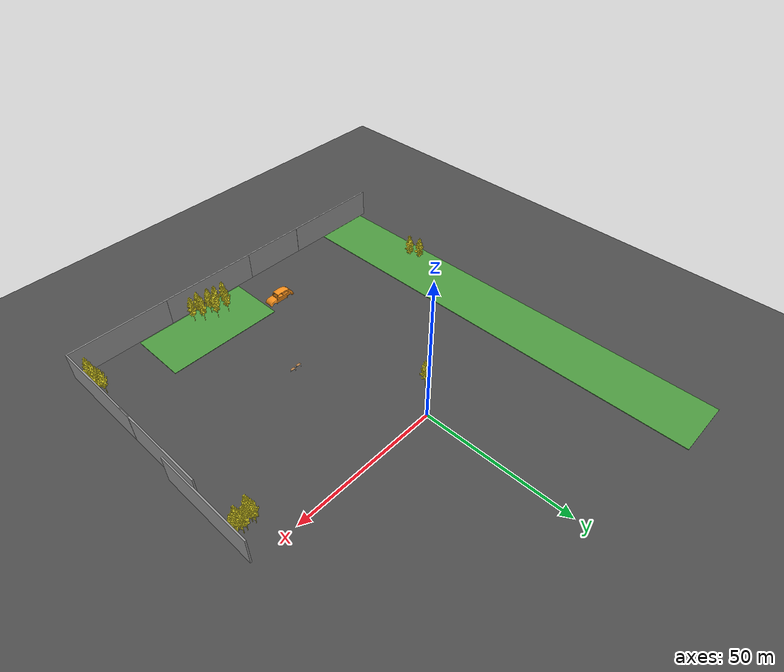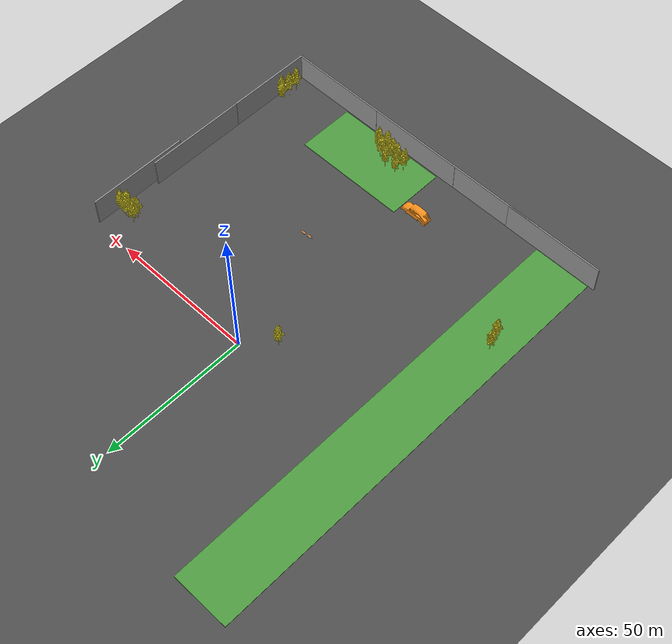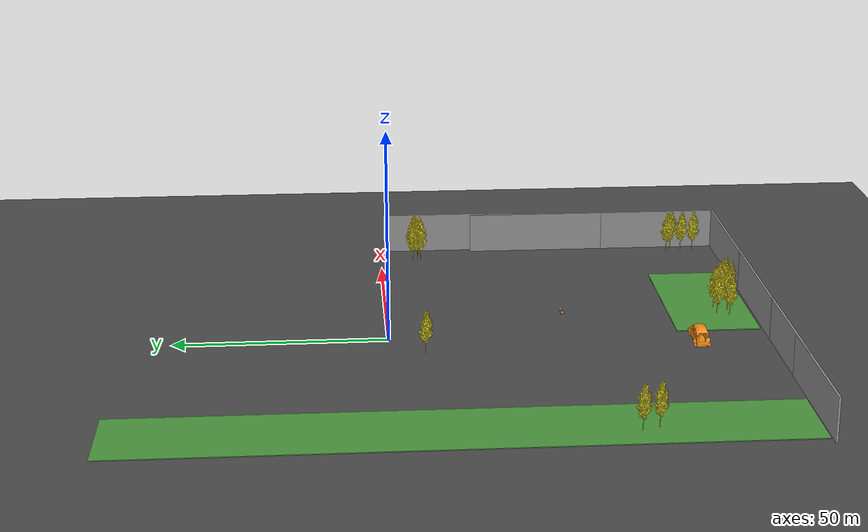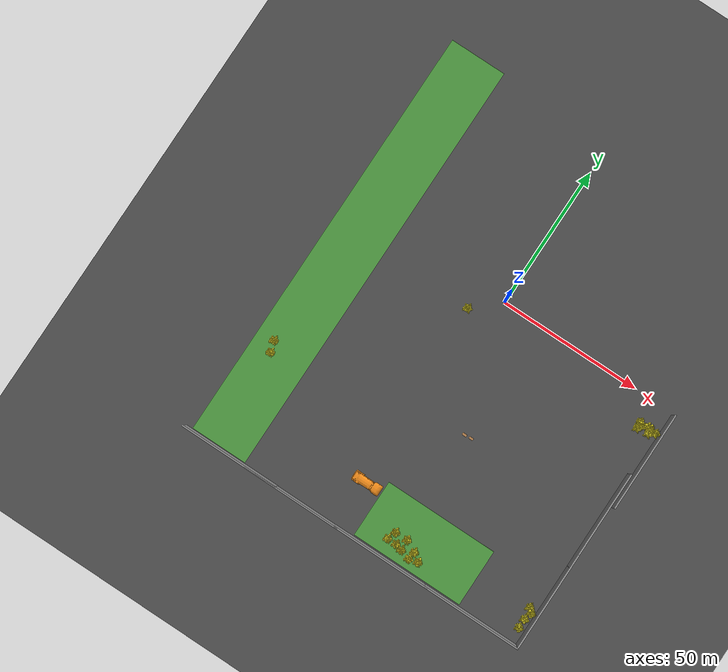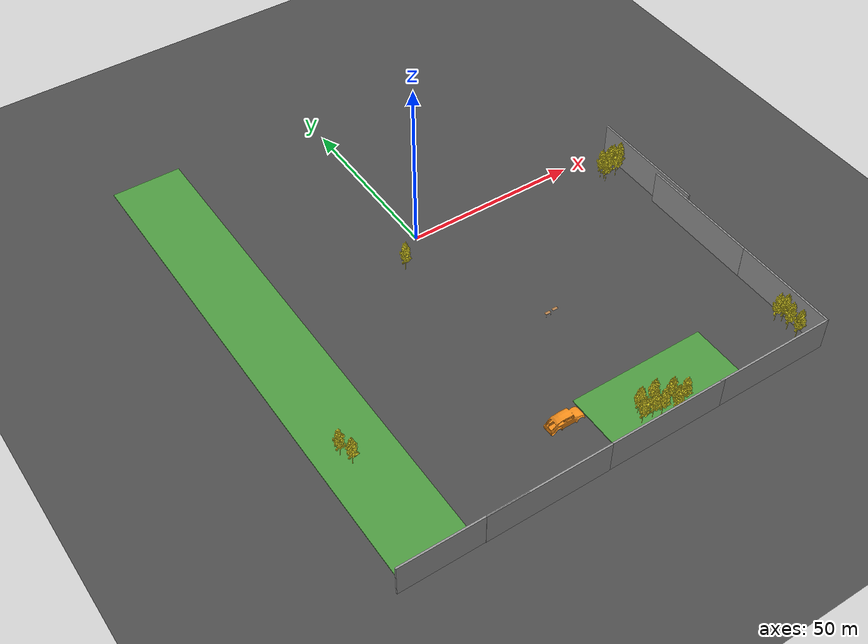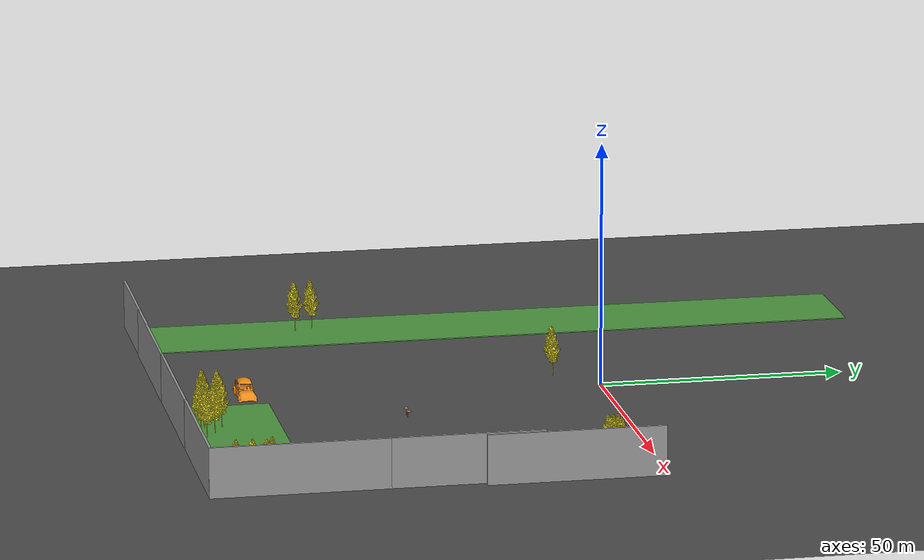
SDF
<sdf version="1.6">
 <world name="default">
  <model name="ground_plane">
   <static>1</static>
   <link name="link">
    <collision name="collision">
     <geometry><plane><normal>0 0 1</normal><size>40000 40000</size></plane></geometry>
     <surface>
      <contact><collide_bitmask>65535</collide_bitmask></contact>
      <friction><ode><mu>100</mu><mu2>50</mu2></ode></friction>
     </surface>
    </collision>
    <visual name="visual">
     <cast_shadows>0</cast_shadows>
     <geometry><plane><normal>0 0 1</normal><size>130 180</size></plane></geometry>
     <material>
      <script><uri>file://media/materials/scripts/gazebo.material</uri><name>Gazebo/Road</name></script>
     </material>
    </visual>
   </link>
  </model>
  <model name="table">
   <static>1</static>
   <link name="link">
    <collision name="surface">
     <pose>0 0 1 0 -0 0</pose>
     <geometry><box><size>1.5 0.8 0.03</size></box></geometry>
     <surface><friction><ode><mu>0.6</mu><mu2>0.6</mu2></ode></friction></surface>
    </collision>
    <visual name="visual1">
     <pose>0 0 1 0 -0 0</pose>
     <geometry><box><size>1.5 0.8 0.03</size></box></geometry>
     <material>
      <script><uri>file://media/materials/scripts/gazebo.material</uri><name>Gazebo/Wood</name></script>
     </material>
    </visual>
    <collision name="front_left_leg">
     <pose>0.68 0.38 0.5 0 -0 0</pose>
     <geometry><cylinder><radius>0.02</radius><length>1</length></cylinder></geometry>
    </collision>
    <visual name="front_left_leg">
     <pose>0.68 0.38 0.5 0 -0 0</pose>
     <geometry><cylinder><radius>0.02</radius><length>1</length></cylinder></geometry>
     <material>
      <script><uri>file://media/materials/scripts/gazebo.material</uri><name>Gazebo/Grey</name></script>
     </material>
    </visual>
    <collision name="front_right_leg">
     <pose>0.68 -0.38 0.5 0 -0 0</pose>
     <geometry><cylinder><radius>0.02</radius><length>1</length></cylinder></geometry>
    </collision>
    <visual name="front_right_leg">
     <pose>0.68 -0.38 0.5 0 -0 0</pose>
     <geometry><cylinder><radius>0.02</radius><length>1</length></cylinder></geometry>
     <material>
      <script><uri>file://media/materials/scripts/gazebo.material</uri><name>Gazebo/Grey</name></script>
     </material>
    </visual>
    <collision name="back_right_leg">
     <pose>-0.68 -0.38 0.5 0 -0 0</pose>
     <geometry><cylinder><radius>0.02</radius><length>1</length></cylinder></geometry>
    </collision>
    <visual name="back_right_leg">
     <pose>-0.68 -0.38 0.5 0 -0 0</pose>
     <geometry><cylinder><radius>0.02</radius><length>1</length></cylinder></geometry>
     <material>
      <script><uri>file://media/materials/scripts/gazebo.material</uri><name>Gazebo/Grey</name></script>
     </material>
    </visual>
    <collision name="back_left_leg">
     <pose>-0.68 0.38 0.5 0 -0 0</pose>
     <geometry><cylinder><radius>0.02</radius><length>1</length></cylinder></geometry>
    </collision>
    <visual name="back_left_leg">
     <pose>-0.68 0.38 0.5 0 -0 0</pose>
     <geometry><cylinder><radius>0.02</radius><length>1</length></cylinder></geometry>
     <material>
      <script><uri>file://media/materials/scripts/gazebo.material</uri><name>Gazebo/Grey</name></script>
     </material>
    </visual>
   </link>
   <pose>15.0111 -42.1076 0 0 -0 0</pose>
  </model>
  <model name="table_0">
   <static>1</static>
   <link name="link">
    <collision name="surface">
     <pose>0 0 1 0 -0 0</pose>
     <geometry><box><size>1.5 0.8 0.03</size></box></geometry>
     <surface><friction><ode><mu>0.6</mu><mu2>0.6</mu2></ode></friction></surface>
    </collision>
    <visual name="visual1">
     <pose>0 0 1 0 -0 0</pose>
     <geometry><box><size>1.5 0.8 0.03</size></box></geometry>
     <material>
      <script><uri>file://media/materials/scripts/gazebo.material</uri><name>Gazebo/Wood</name></script>
     </material>
    </visual>
    <collision name="front_left_leg">
     <pose>0.68 0.38 0.5 0 -0 0</pose>
     <geometry><cylinder><radius>0.02</radius><length>1</length></cylinder></geometry>
    </collision>
    <visual name="front_left_leg">
     <pose>0.68 0.38 0.5 0 -0 0</pose>
     <geometry><cylinder><radius>0.02</radius><length>1</length></cylinder></geometry>
     <material>
      <script><uri>file://media/materials/scripts/gazebo.material</uri><name>Gazebo/Grey</name></script>
     </material>
    </visual>
    <collision name="front_right_leg">
     <pose>0.68 -0.38 0.5 0 -0 0</pose>
     <geometry><cylinder><radius>0.02</radius><length>1</length></cylinder></geometry>
    </collision>
    <visual name="front_right_leg">
     <pose>0.68 -0.38 0.5 0 -0 0</pose>
     <geometry><cylinder><radius>0.02</radius><length>1</length></cylinder></geometry>
     <material>
      <script><uri>file://media/materials/scripts/gazebo.material</uri><name>Gazebo/Grey</name></script>
     </material>
    </visual>
    <collision name="back_right_leg">
     <pose>-0.68 -0.38 0.5 0 -0 0</pose>
     <geometry><cylinder><radius>0.02</radius><length>1</length></cylinder></geometry>
    </collision>
    <visual name="back_right_leg">
     <pose>-0.68 -0.38 0.5 0 -0 0</pose>
     <geometry><cylinder><radius>0.02</radius><length>1</length></cylinder></geometry>
     <material>
      <script><uri>file://media/materials/scripts/gazebo.material</uri><name>Gazebo/Grey</name></script>
     </material>
    </visual>
    <collision name="back_left_leg">
     <pose>-0.68 0.38 0.5 0 -0 0</pose>
     <geometry><cylinder><radius>0.02</radius><length>1</length></cylinder></geometry>
    </collision>
    <visual name="back_left_leg">
     <pose>-0.68 0.38 0.5 0 -0 0</pose>
     <geometry><cylinder><radius>0.02</radius><length>1</length></cylinder></geometry>
     <material>
      <script><uri>file://media/materials/scripts/gazebo.material</uri><name>Gazebo/Grey</name></script>
     </material>
    </visual>
   </link>
   <pose>12.6248 -42.2786 0 0 -0 0</pose>
  </model>
  <model name="wall1_clone_clone_0_clone_3">
   <link name="link">
    <enable_wind>1</enable_wind>
    <inertial>
     <mass>1</mass>
     <inertia><ixx>1</ixx><ixy>0</ixy><ixz>0</ixz><iyy>1</iyy><iyz>0</iyz><izz>1</izz></inertia>
    </inertial>
    <visual name="visual">
     <cast_shadows>0</cast_shadows>
     <geometry><box><size>35 0.5 10</size></box></geometry>
     <material>
      <script>
       <uri>model://grey_wall/materials/scripts</uri>
       <uri>model://grey_wall/materials/textures</uri>
       <name>vrc/grey_wall</name>
      </script>
      <shader type="pixel"><normal_map>__default__</normal_map></shader>
      <ambient>1 1 1 1</ambient>
      <diffuse>1 1 1 1</diffuse>
      <specular>0 0 0 1</specular>
      <emissive>0 0 0 1</emissive>
     </material>
    </visual>
    <collision name="collision">
     <geometry><box><size>35 0.5 10</size></box></geometry>
     <surface>
      <friction>
       <ode><mu>1</mu><mu2>1</mu2><fdir1>0 0 0</fdir1><slip1>0</slip1><slip2>0</slip2></ode>
       <torsional>
        <coefficient>1</coefficient>
        <patch_radius>0</patch_radius>
        <surface_radius>0</surface_radius>
        <use_patch_radius>1</use_patch_radius>
        <ode><slip>0</slip></ode>
       </torsional>
      </friction>
      <bounce><restitution_coefficient>0</restitution_coefficient><threshold>1e+06</threshold></bounce>
      <contact>
       <collide_without_contact>0</collide_without_contact>
       <collide_without_contact_bitmask>1</collide_without_contact_bitmask>
       <collide_bitmask>1</collide_bitmask>
       <ode>
        <soft_cfm>0</soft_cfm>
        <soft_erp>0.2</soft_erp>
        <kp>1e+13</kp>
        <kd>1</kd>
        <max_vel>0.01</max_vel>
        <min_depth>0</min_depth>
       </ode>
       <bullet>
        <split_impulse>1</split_impulse>
        <split_impulse_penetration_threshold>-0.01</split_impulse_penetration_threshold>
        <soft_cfm>0</soft_cfm>
        <soft_erp>0.2</soft_erp>
        <kp>1e+13</kp>
        <kd>1</kd>
       </bullet>
      </contact>
     </surface>
    </collision>
   </link>
   <static>1</static>
   <pose>62.8276 -41.3887 5 0 0 -1.57191</pose>
  </model>
  <model name="wall1_clone_clone_0_clone_4">
   <link name="link">
    <enable_wind>1</enable_wind>
    <inertial>
     <mass>1</mass>
     <inertia><ixx>1</ixx><ixy>0</ixy><ixz>0</ixz><iyy>1</iyy><iyz>0</iyz><izz>1</izz></inertia>
    </inertial>
    <visual name="visual">
     <cast_shadows>0</cast_shadows>
     <geometry><box><size>35 0.5 10</size></box></geometry>
     <material>
      <script>
       <uri>model://grey_wall/materials/scripts</uri>
       <uri>model://grey_wall/materials/textures</uri>
       <name>vrc/grey_wall</name>
      </script>
      <shader type="pixel"><normal_map>__default__</normal_map></shader>
      <ambient>1 1 1 1</ambient>
      <diffuse>1 1 1 1</diffuse>
      <specular>0 0 0 1</specular>
      <emissive>0 0 0 1</emissive>
     </material>
    </visual>
    <collision name="collision">
     <geometry><box><size>35 0.5 10</size></box></geometry>
     <surface>
      <friction>
       <ode><mu>1</mu><mu2>1</mu2><fdir1>0 0 0</fdir1><slip1>0</slip1><slip2>0</slip2></ode>
       <torsional>
        <coefficient>1</coefficient>
        <patch_radius>0</patch_radius>
        <surface_radius>0</surface_radius>
        <use_patch_radius>1</use_patch_radius>
        <ode><slip>0</slip></ode>
       </torsional>
      </friction>
      <bounce><restitution_coefficient>0</restitution_coefficient><threshold>1e+06</threshold></bounce>
      <contact>
       <collide_without_contact>0</collide_without_contact>
       <collide_without_contact_bitmask>1</collide_without_contact_bitmask>
       <collide_bitmask>1</collide_bitmask>
       <ode>
        <soft_cfm>0</soft_cfm>
        <soft_erp>0.2</soft_erp>
        <kp>1e+13</kp>
        <kd>1</kd>
        <max_vel>0.01</max_vel>
        <min_depth>0</min_depth>
       </ode>
       <bullet>
        <split_impulse>1</split_impulse>
        <split_impulse_penetration_threshold>-0.01</split_impulse_penetration_threshold>
        <soft_cfm>0</soft_cfm>
        <soft_erp>0.2</soft_erp>
        <kp>1e+13</kp>
        <kd>1</kd>
       </bullet>
      </contact>
     </surface>
    </collision>
   </link>
   <static>1</static>
   <pose>62.8357 -71.4632 5 0 0 -1.57191</pose>
  </model>
  <model name="wall1_clone_clone_clone">
   <link name="link">
    <enable_wind>1</enable_wind>
    <inertial>
     <mass>1</mass>
     <inertia><ixx>1</ixx><ixy>0</ixy><ixz>0</ixz><iyy>1</iyy><iyz>0</iyz><izz>1</izz></inertia>
    </inertial>
    <visual name="visual">
     <cast_shadows>0</cast_shadows>
     <geometry><box><size>35 0.5 10</size></box></geometry>
     <material>
      <script>
       <uri>model://grey_wall/materials/scripts</uri>
       <uri>model://grey_wall/materials/textures</uri>
       <name>vrc/grey_wall</name>
      </script>
      <shader type="pixel"><normal_map>__default__</normal_map></shader>
      <ambient>1 1 1 1</ambient>
      <diffuse>1 1 1 1</diffuse>
      <specular>0 0 0 1</specular>
      <emissive>0 0 0 1</emissive>
     </material>
    </visual>
    <collision name="collision">
     <geometry><box><size>35 0.5 10</size></box></geometry>
     <surface>
      <friction>
       <ode><mu>1</mu><mu2>1</mu2><fdir1>0 0 0</fdir1><slip1>0</slip1><slip2>0</slip2></ode>
       <torsional>
        <coefficient>1</coefficient>
        <patch_radius>0</patch_radius>
        <surface_radius>0</surface_radius>
        <use_patch_radius>1</use_patch_radius>
        <ode><slip>0</slip></ode>
       </torsional>
      </friction>
      <bounce><restitution_coefficient>0</restitution_coefficient><threshold>1e+06</threshold></bounce>
      <contact>
       <collide_without_contact>0</collide_without_contact>
       <collide_without_contact_bitmask>1</collide_without_contact_bitmask>
       <collide_bitmask>1</collide_bitmask>
       <ode>
        <soft_cfm>0</soft_cfm>
        <soft_erp>0.2</soft_erp>
        <kp>1e+13</kp>
        <kd>1</kd>
        <max_vel>0.01</max_vel>
        <min_depth>0</min_depth>
       </ode>
       <bullet>
        <split_impulse>1</split_impulse>
        <split_impulse_penetration_threshold>-0.01</split_impulse_penetration_threshold>
        <soft_cfm>0</soft_cfm>
        <soft_erp>0.2</soft_erp>
        <kp>1e+13</kp>
        <kd>1</kd>
       </bullet>
      </contact>
     </surface>
    </collision>
   </link>
   <static>1</static>
   <pose>45.5042 -88.7374 5 0 -0 0</pose>
  </model>
  <model name="wall1_clone_clone_clone_0">
   <link name="link">
    <enable_wind>1</enable_wind>
    <inertial>
     <mass>1</mass>
     <inertia><ixx>1</ixx><ixy>0</ixy><ixz>0</ixz><iyy>1</iyy><iyz>0</iyz><izz>1</izz></inertia>
    </inertial>
    <visual name="visual">
     <cast_shadows>0</cast_shadows>
     <geometry><box><size>35 0.5 10</size></box></geometry>
     <material>
      <script>
       <uri>model://grey_wall/materials/scripts</uri>
       <uri>model://grey_wall/materials/textures</uri>
       <name>vrc/grey_wall</name>
      </script>
      <shader type="pixel"><normal_map>__default__</normal_map></shader>
      <ambient>1 1 1 1</ambient>
      <diffuse>1 1 1 1</diffuse>
      <specular>0 0 0 1</specular>
      <emissive>0 0 0 1</emissive>
     </material>
    </visual>
    <collision name="collision">
     <geometry><box><size>35 0.5 10</size></box></geometry>
     <surface>
      <friction>
       <ode><mu>1</mu><mu2>1</mu2><fdir1>0 0 0</fdir1><slip1>0</slip1><slip2>0</slip2></ode>
       <torsional>
        <coefficient>1</coefficient>
        <patch_radius>0</patch_radius>
        <surface_radius>0</surface_radius>
        <use_patch_radius>1</use_patch_radius>
        <ode><slip>0</slip></ode>
       </torsional>
      </friction>
      <bounce><restitution_coefficient>0</restitution_coefficient><threshold>1e+06</threshold></bounce>
      <contact>
       <collide_without_contact>0</collide_without_contact>
       <collide_without_contact_bitmask>1</collide_without_contact_bitmask>
       <collide_bitmask>1</collide_bitmask>
       <ode>
        <soft_cfm>0</soft_cfm>
        <soft_erp>0.2</soft_erp>
        <kp>1e+13</kp>
        <kd>1</kd>
        <max_vel>0.01</max_vel>
        <min_depth>0</min_depth>
       </ode>
       <bullet>
        <split_impulse>1</split_impulse>
        <split_impulse_penetration_threshold>-0.01</split_impulse_penetration_threshold>
        <soft_cfm>0</soft_cfm>
        <soft_erp>0.2</soft_erp>
        <kp>1e+13</kp>
        <kd>1</kd>
       </bullet>
      </contact>
     </surface>
    </collision>
   </link>
   <static>1</static>
   <pose>11.7564 -88.7753 5 0 -0 0</pose>
  </model>
  <model name="wall1_clone_clone_clone_1">
   <link name="link">
    <enable_wind>1</enable_wind>
    <inertial>
     <mass>1</mass>
     <inertia><ixx>1</ixx><ixy>0</ixy><ixz>0</ixz><iyy>1</iyy><iyz>0</iyz><izz>1</izz></inertia>
    </inertial>
    <visual name="visual">
     <cast_shadows>0</cast_shadows>
     <geometry><box><size>35 0.5 10</size></box></geometry>
     <material>
      <script>
       <uri>model://grey_wall/materials/scripts</uri>
       <uri>model://grey_wall/materials/textures</uri>
       <name>vrc/grey_wall</name>
      </script>
      <shader type="pixel"><normal_map>__default__</normal_map></shader>
      <ambient>1 1 1 1</ambient>
      <diffuse>1 1 1 1</diffuse>
      <specular>0 0 0 1</specular>
      <emissive>0 0 0 1</emissive>
     </material>
    </visual>
    <collision name="collision">
     <geometry><box><size>35 0.5 10</size></box></geometry>
     <surface>
      <friction>
       <ode><mu>1</mu><mu2>1</mu2><fdir1>0 0 0</fdir1><slip1>0</slip1><slip2>0</slip2></ode>
       <torsional>
        <coefficient>1</coefficient>
        <patch_radius>0</patch_radius>
        <surface_radius>0</surface_radius>
        <use_patch_radius>1</use_patch_radius>
        <ode><slip>0</slip></ode>
       </torsional>
      </friction>
      <bounce><restitution_coefficient>0</restitution_coefficient><threshold>1e+06</threshold></bounce>
      <contact>
       <collide_without_contact>0</collide_without_contact>
       <collide_without_contact_bitmask>1</collide_without_contact_bitmask>
       <collide_bitmask>1</collide_bitmask>
       <ode>
        <soft_cfm>0</soft_cfm>
        <soft_erp>0.2</soft_erp>
        <kp>1e+13</kp>
        <kd>1</kd>
        <max_vel>0.01</max_vel>
        <min_depth>0</min_depth>
       </ode>
       <bullet>
        <split_impulse>1</split_impulse>
        <split_impulse_penetration_threshold>-0.01</split_impulse_penetration_threshold>
        <soft_cfm>0</soft_cfm>
        <soft_erp>0.2</soft_erp>
        <kp>1e+13</kp>
        <kd>1</kd>
       </bullet>
      </contact>
     </surface>
    </collision>
   </link>
   <static>1</static>
   <pose>-22.0368 -88.8383 5 0 -0 0</pose>
  </model>
  <model name="wall1_clone_clone_clone_2">
   <link name="link">
    <enable_wind>1</enable_wind>
    <inertial>
     <mass>1</mass>
     <inertia><ixx>1</ixx><ixy>0</ixy><ixz>0</ixz><iyy>1</iyy><iyz>0</iyz><izz>1</izz></inertia>
    </inertial>
    <visual name="visual">
     <cast_shadows>0</cast_shadows>
     <geometry><box><size>35 0.5 10</size></box></geometry>
     <material>
      <script>
       <uri>model://grey_wall/materials/scripts</uri>
       <uri>model://grey_wall/materials/textures</uri>
       <name>vrc/grey_wall</name>
      </script>
      <shader type="pixel"><normal_map>__default__</normal_map></shader>
      <ambient>1 1 1 1</ambient>
      <diffuse>1 1 1 1</diffuse>
      <specular>0 0 0 1</specular>
      <emissive>0 0 0 1</emissive>
     </material>
    </visual>
    <collision name="collision">
     <geometry><box><size>35 0.5 10</size></box></geometry>
     <surface>
      <friction>
       <ode><mu>1</mu><mu2>1</mu2><fdir1>0 0 0</fdir1><slip1>0</slip1><slip2>0</slip2></ode>
       <torsional>
        <coefficient>1</coefficient>
        <patch_radius>0</patch_radius>
        <surface_radius>0</surface_radius>
        <use_patch_radius>1</use_patch_radius>
        <ode><slip>0</slip></ode>
       </torsional>
      </friction>
      <bounce><restitution_coefficient>0</restitution_coefficient><threshold>1e+06</threshold></bounce>
      <contact>
       <collide_without_contact>0</collide_without_contact>
       <collide_without_contact_bitmask>1</collide_without_contact_bitmask>
       <collide_bitmask>1</collide_bitmask>
       <ode>
        <soft_cfm>0</soft_cfm>
        <soft_erp>0.2</soft_erp>
        <kp>1e+13</kp>
        <kd>1</kd>
        <max_vel>0.01</max_vel>
        <min_depth>0</min_depth>
       </ode>
       <bullet>
        <split_impulse>1</split_impulse>
        <split_impulse_penetration_threshold>-0.01</split_impulse_penetration_threshold>
        <soft_cfm>0</soft_cfm>
        <soft_erp>0.2</soft_erp>
        <kp>1e+13</kp>
        <kd>1</kd>
       </bullet>
      </contact>
     </surface>
    </collision>
   </link>
   <static>1</static>
   <pose>-45.3658 -88.7631 5 0 -0 0</pose>
  </model>
  <model name="tree0_clone_clone_clone_0">
   <link name="tree_base">
    <inertial>
     <mass>50</mass>
     <inertia>
      <ixx>6.71748</ixx>
      <ixy>2.148e-05</ixy>
      <ixz>-2.4e-07</ixz>
      <iyy>6.71748</iyy>
      <iyz>-0.171807</iyz>
      <izz>6.71748</izz>
     </inertia>
    </inertial>
    <collision name="tree_base_fixed_joint_lump__collision_collision">
     <geometry><mesh><scale>0.4 0.4 0.6</scale><uri>model://tree/meshes/tree_25k_mesh.dae</uri></mesh></geometry>
    </collision>
    <visual name="tree_base_visual">
     <geometry><mesh><scale>0.4 0.4 0.6</scale><uri>model://tree/meshes/tree_25k_mesh.dae</uri></mesh></geometry>
     <material>
      <script><name>Gazebo/Yellow</name><uri>file://media/materials/scripts/gazebo.material</uri></script>
     </material>
    </visual>
   </link>
   <joint name="joint_tree_base" type="fixed"><child>tree_base</child><parent>world</parent></joint>
   <static>1</static>
   <pose>-8.66352 -4.45008 0 0 -0 0</pose>
  </model>
  <model name="tree0_clone_clone_clone_14">
   <link name="tree_base">
    <inertial>
     <mass>50</mass>
     <inertia>
      <ixx>6.71748</ixx>
      <ixy>2.148e-05</ixy>
      <ixz>-2.4e-07</ixz>
      <iyy>6.71748</iyy>
      <iyz>-0.171807</iyz>
      <izz>6.71748</izz>
     </inertia>
    </inertial>
    <collision name="tree_base_fixed_joint_lump__collision_collision">
     <geometry><mesh><scale>0.4 0.4 0.6</scale><uri>model://tree/meshes/tree_25k_mesh.dae</uri></mesh></geometry>
    </collision>
    <visual name="tree_base_visual">
     <geometry><mesh><scale>0.4 0.4 0.6</scale><uri>model://tree/meshes/tree_25k_mesh.dae</uri></mesh></geometry>
     <material>
      <script><name>Gazebo/Yellow</name><uri>file://media/materials/scripts/gazebo.material</uri></script>
     </material>
    </visual>
   </link>
   <joint name="joint_tree_base" type="fixed"><child>tree_base</child><parent>world</parent></joint>
   <static>1</static>
   <pose>-54.0866 -46.8303 0 0 -0 0</pose>
  </model>
  <model name="tree0_clone_clone_clone_16">
   <link name="tree_base">
    <inertial>
     <mass>50</mass>
     <inertia>
      <ixx>6.71748</ixx>
      <ixy>2.148e-05</ixy>
      <ixz>-2.4e-07</ixz>
      <iyy>6.71748</iyy>
      <iyz>-0.171807</iyz>
      <izz>6.71748</izz>
     </inertia>
    </inertial>
    <collision name="tree_base_fixed_joint_lump__collision_collision">
     <geometry><mesh><scale>0.4 0.4 0.6</scale><uri>model://tree/meshes/tree_25k_mesh.dae</uri></mesh></geometry>
    </collision>
    <visual name="tree_base_visual">
     <geometry><mesh><scale>0.4 0.4 0.6</scale><uri>model://tree/meshes/tree_25k_mesh.dae</uri></mesh></geometry>
     <material>
      <script><name>Gazebo/Yellow</name><uri>file://media/materials/scripts/gazebo.material</uri></script>
     </material>
    </visual>
   </link>
   <joint name="joint_tree_base" type="fixed"><child>tree_base</child><parent>world</parent></joint>
   <static>1</static>
   <pose>-52.9016 -50.5534 0 0 -0 0</pose>
  </model>
  <model name="wall1_clone_clone_0_clone_5_clone_1">
   <link name="link">
    <enable_wind>1</enable_wind>
    <inertial>
     <mass>1</mass>
     <inertia><ixx>1</ixx><ixy>0</ixy><ixz>0</ixz><iyy>1</iyy><iyz>0</iyz><izz>1</izz></inertia>
    </inertial>
    <visual name="visual">
     <cast_shadows>0</cast_shadows>
     <geometry><box><size>35 0.5 10</size></box></geometry>
     <material>
      <script>
       <uri>model://grey_wall/materials/scripts</uri>
       <uri>model://grey_wall/materials/textures</uri>
       <name>vrc/grey_wall</name>
      </script>
      <shader type="pixel"><normal_map>__default__</normal_map></shader>
      <ambient>1 1 1 1</ambient>
      <diffuse>1 1 1 1</diffuse>
      <specular>0 0 0 1</specular>
      <emissive>0 0 0 1</emissive>
     </material>
    </visual>
    <collision name="collision">
     <geometry><box><size>35 0.5 10</size></box></geometry>
     <surface>
      <friction>
       <ode><mu>1</mu><mu2>1</mu2><fdir1>0 0 0</fdir1><slip1>0</slip1><slip2>0</slip2></ode>
       <torsional>
        <coefficient>1</coefficient>
        <patch_radius>0</patch_radius>
        <surface_radius>0</surface_radius>
        <use_patch_radius>1</use_patch_radius>
        <ode><slip>0</slip></ode>
       </torsional>
      </friction>
      <bounce><restitution_coefficient>0</restitution_coefficient><threshold>1e+06</threshold></bounce>
      <contact>
       <collide_without_contact>0</collide_without_contact>
       <collide_without_contact_bitmask>1</collide_without_contact_bitmask>
       <collide_bitmask>1</collide_bitmask>
       <ode>
        <soft_cfm>0</soft_cfm>
        <soft_erp>0.2</soft_erp>
        <kp>1e+13</kp>
        <kd>1</kd>
        <max_vel>0.01</max_vel>
        <min_depth>0</min_depth>
       </ode>
       <bullet>
        <split_impulse>1</split_impulse>
        <split_impulse_penetration_threshold>-0.01</split_impulse_penetration_threshold>
        <soft_cfm>0</soft_cfm>
        <soft_erp>0.2</soft_erp>
        <kp>1e+13</kp>
        <kd>1</kd>
       </bullet>
      </contact>
     </surface>
    </collision>
   </link>
   <static>1</static>
   <pose>64.282 -18.2132 5 0 0 -1.57191</pose>
  </model>
  <model name="tree0_clone_clone_clone_1_clone_4_clone">
   <link name="tree_base">
    <inertial>
     <mass>50</mass>
     <inertia>
      <ixx>6.71748</ixx>
      <ixy>2.148e-05</ixy>
      <ixz>-2.4e-07</ixz>
      <iyy>6.71748</iyy>
      <iyz>-0.171807</iyz>
      <izz>6.71748</izz>
     </inertia>
    </inertial>
    <collision name="tree_base_fixed_joint_lump__collision_collision">
     <geometry><mesh><scale>0.4 0.4 0.6</scale><uri>model://tree/meshes/tree_25k_mesh.dae</uri></mesh></geometry>
    </collision>
    <visual name="tree_base_visual">
     <geometry><mesh><scale>0.4 0.4 0.6</scale><uri>model://tree/meshes/tree_25k_mesh.dae</uri></mesh></geometry>
     <material>
      <script><name>Gazebo/Yellow</name><uri>file://media/materials/scripts/gazebo.material</uri></script>
     </material>
    </visual>
   </link>
   <joint name="joint_tree_base" type="fixed"><child>tree_base</child><parent>world</parent></joint>
   <static>1</static>
   <pose>56.8639 -6.61975 0 0 -0 0</pose>
  </model>
  <model name="tree0_clone_clone_clone_1_clone_4_clone_0">
   <link name="tree_base">
    <inertial>
     <mass>50</mass>
     <inertia>
      <ixx>6.71748</ixx>
      <ixy>2.148e-05</ixy>
      <ixz>-2.4e-07</ixz>
      <iyy>6.71748</iyy>
      <iyz>-0.171807</iyz>
      <izz>6.71748</izz>
     </inertia>
    </inertial>
    <collision name="tree_base_fixed_joint_lump__collision_collision">
     <geometry><mesh><scale>0.4 0.4 0.6</scale><uri>model://tree/meshes/tree_25k_mesh.dae</uri></mesh></geometry>
    </collision>
    <visual name="tree_base_visual">
     <geometry><mesh><scale>0.4 0.4 0.6</scale><uri>model://tree/meshes/tree_25k_mesh.dae</uri></mesh></geometry>
     <material>
      <script><name>Gazebo/Yellow</name><uri>file://media/materials/scripts/gazebo.material</uri></script>
     </material>
    </visual>
   </link>
   <joint name="joint_tree_base" type="fixed"><child>tree_base</child><parent>world</parent></joint>
   <static>1</static>
   <pose>59.3499 -4.55438 0 0 -0 0</pose>
  </model>
  <model name="tree0_clone_clone_clone_1_clone_4_clone_1">
   <link name="tree_base">
    <inertial>
     <mass>50</mass>
     <inertia>
      <ixx>6.71748</ixx>
      <ixy>2.148e-05</ixy>
      <ixz>-2.4e-07</ixz>
      <iyy>6.71748</iyy>
      <iyz>-0.171807</iyz>
      <izz>6.71748</izz>
     </inertia>
    </inertial>
    <collision name="tree_base_fixed_joint_lump__collision_collision">
     <geometry><mesh><scale>0.4 0.4 0.6</scale><uri>model://tree/meshes/tree_25k_mesh.dae</uri></mesh></geometry>
    </collision>
    <visual name="tree_base_visual">
     <geometry><mesh><scale>0.4 0.4 0.6</scale><uri>model://tree/meshes/tree_25k_mesh.dae</uri></mesh></geometry>
     <material>
      <script><name>Gazebo/Yellow</name><uri>file://media/materials/scripts/gazebo.material</uri></script>
     </material>
    </visual>
   </link>
   <joint name="joint_tree_base" type="fixed"><child>tree_base</child><parent>world</parent></joint>
   <static>1</static>
   <pose>56.6016 -4.57491 0 0 -0 0</pose>
  </model>
  <model name="tree0_clone_clone_clone_1_clone_4_clone_7_clone">
   <link name="tree_base">
    <inertial>
     <mass>50</mass>
     <inertia>
      <ixx>6.71748</ixx>
      <ixy>2.148e-05</ixy>
      <ixz>-2.4e-07</ixz>
      <iyy>6.71748</iyy>
      <iyz>-0.171807</iyz>
      <izz>6.71748</izz>
     </inertia>
    </inertial>
    <collision name="tree_base_fixed_joint_lump__collision_collision">
     <geometry><mesh><scale>0.4 0.4 0.6</scale><uri>model://tree/meshes/tree_25k_mesh.dae</uri></mesh></geometry>
    </collision>
    <visual name="tree_base_visual">
     <geometry><mesh><scale>0.4 0.4 0.6</scale><uri>model://tree/meshes/tree_25k_mesh.dae</uri></mesh></geometry>
     <material>
      <script><name>Gazebo/Yellow</name><uri>file://media/materials/scripts/gazebo.material</uri></script>
     </material>
    </visual>
   </link>
   <joint name="joint_tree_base" type="fixed"><child>tree_base</child><parent>world</parent></joint>
   <static>1</static>
   <pose>22.4047 -79.8767 0 0 -0 0</pose>
  </model>
  <model name="tree0_clone_clone_clone_1_clone_4_clone_7_clone_0">
   <link name="tree_base">
    <inertial>
     <mass>50</mass>
     <inertia>
      <ixx>6.71748</ixx>
      <ixy>2.148e-05</ixy>
      <ixz>-2.4e-07</ixz>
      <iyy>6.71748</iyy>
      <iyz>-0.171807</iyz>
      <izz>6.71748</izz>
     </inertia>
    </inertial>
    <collision name="tree_base_fixed_joint_lump__collision_collision">
     <geometry><mesh><scale>0.4 0.4 0.6</scale><uri>model://tree/meshes/tree_25k_mesh.dae</uri></mesh></geometry>
    </collision>
    <visual name="tree_base_visual">
     <geometry><mesh><scale>0.4 0.4 0.6</scale><uri>model://tree/meshes/tree_25k_mesh.dae</uri></mesh></geometry>
     <material>
      <script><name>Gazebo/Yellow</name><uri>file://media/materials/scripts/gazebo.material</uri></script>
     </material>
    </visual>
   </link>
   <joint name="joint_tree_base" type="fixed"><child>tree_base</child><parent>world</parent></joint>
   <static>1</static>
   <pose>19.3507 -80.6253 0 0 -0 0</pose>
  </model>
  <model name="tree0_clone_clone_clone_1_clone_4_clone_7_clone_1">
   <link name="tree_base">
    <inertial>
     <mass>50</mass>
     <inertia>
      <ixx>6.71748</ixx>
      <ixy>2.148e-05</ixy>
      <ixz>-2.4e-07</ixz>
      <iyy>6.71748</iyy>
      <iyz>-0.171807</iyz>
      <izz>6.71748</izz>
     </inertia>
    </inertial>
    <collision name="tree_base_fixed_joint_lump__collision_collision">
     <geometry><mesh><scale>0.4 0.4 0.6</scale><uri>model://tree/meshes/tree_25k_mesh.dae</uri></mesh></geometry>
    </collision>
    <visual name="tree_base_visual">
     <geometry><mesh><scale>0.4 0.4 0.6</scale><uri>model://tree/meshes/tree_25k_mesh.dae</uri></mesh></geometry>
     <material>
      <script><name>Gazebo/Yellow</name><uri>file://media/materials/scripts/gazebo.material</uri></script>
     </material>
    </visual>
   </link>
   <joint name="joint_tree_base" type="fixed"><child>tree_base</child><parent>world</parent></joint>
   <static>1</static>
   <pose>19.7208 -77.9418 0 0 -0 0</pose>
  </model>
  <model name="tree0_clone_clone_clone_1_clone_4_clone_7_clone_2">
   <link name="tree_base">
    <inertial>
     <mass>50</mass>
     <inertia>
      <ixx>6.71748</ixx>
      <ixy>2.148e-05</ixy>
      <ixz>-2.4e-07</ixz>
      <iyy>6.71748</iyy>
      <iyz>-0.171807</iyz>
      <izz>6.71748</izz>
     </inertia>
    </inertial>
    <collision name="tree_base_fixed_joint_lump__collision_collision">
     <geometry><mesh><scale>0.4 0.4 0.6</scale><uri>model://tree/meshes/tree_25k_mesh.dae</uri></mesh></geometry>
    </collision>
    <visual name="tree_base_visual">
     <geometry><mesh><scale>0.4 0.4 0.6</scale><uri>model://tree/meshes/tree_25k_mesh.dae</uri></mesh></geometry>
     <material>
      <script><name>Gazebo/Yellow</name><uri>file://media/materials/scripts/gazebo.material</uri></script>
     </material>
    </visual>
   </link>
   <joint name="joint_tree_base" type="fixed"><child>tree_base</child><parent>world</parent></joint>
   <static>1</static>
   <pose>15.919 -79.5586 0 0 -0 0</pose>
  </model>
  <model name="tree0_clone_clone_clone_1_clone_4_clone_7_clone_3">
   <link name="tree_base">
    <inertial>
     <mass>50</mass>
     <inertia>
      <ixx>6.71748</ixx>
      <ixy>2.148e-05</ixy>
      <ixz>-2.4e-07</ixz>
      <iyy>6.71748</iyy>
      <iyz>-0.171807</iyz>
      <izz>6.71748</izz>
     </inertia>
    </inertial>
    <collision name="tree_base_fixed_joint_lump__collision_collision">
     <geometry><mesh><scale>0.4 0.4 0.6</scale><uri>model://tree/meshes/tree_25k_mesh.dae</uri></mesh></geometry>
    </collision>
    <visual name="tree_base_visual">
     <geometry><mesh><scale>0.4 0.4 0.6</scale><uri>model://tree/meshes/tree_25k_mesh.dae</uri></mesh></geometry>
     <material>
      <script><name>Gazebo/Yellow</name><uri>file://media/materials/scripts/gazebo.material</uri></script>
     </material>
    </visual>
   </link>
   <joint name="joint_tree_base" type="fixed"><child>tree_base</child><parent>world</parent></joint>
   <static>1</static>
   <pose>15.7362 -76.0122 0 0 -0 0</pose>
  </model>
  <model name="tree0_clone_clone_clone_1_clone_4_clone_7_clone_4">
   <link name="tree_base">
    <inertial>
     <mass>50</mass>
     <inertia>
      <ixx>6.71748</ixx>
      <ixy>2.148e-05</ixy>
      <ixz>-2.4e-07</ixz>
      <iyy>6.71748</iyy>
      <iyz>-0.171807</iyz>
      <izz>6.71748</izz>
     </inertia>
    </inertial>
    <collision name="tree_base_fixed_joint_lump__collision_collision">
     <geometry><mesh><scale>0.4 0.4 0.6</scale><uri>model://tree/meshes/tree_25k_mesh.dae</uri></mesh></geometry>
    </collision>
    <visual name="tree_base_visual">
     <geometry><mesh><scale>0.4 0.4 0.6</scale><uri>model://tree/meshes/tree_25k_mesh.dae</uri></mesh></geometry>
     <material>
      <script><name>Gazebo/Yellow</name><uri>file://media/materials/scripts/gazebo.material</uri></script>
     </material>
    </visual>
   </link>
   <joint name="joint_tree_base" type="fixed"><child>tree_base</child><parent>world</parent></joint>
   <static>1</static>
   <pose>13.5609 -78.9873 0 0 -0 0</pose>
  </model>
  <model name="tree0_clone_clone_clone_1_clone_4_clone_7_clone_5">
   <link name="tree_base">
    <inertial>
     <mass>50</mass>
     <inertia>
      <ixx>6.71748</ixx>
      <ixy>2.148e-05</ixy>
      <ixz>-2.4e-07</ixz>
      <iyy>6.71748</iyy>
      <iyz>-0.171807</iyz>
      <izz>6.71748</izz>
     </inertia>
    </inertial>
    <collision name="tree_base_fixed_joint_lump__collision_collision">
     <geometry><mesh><scale>0.4 0.4 0.6</scale><uri>model://tree/meshes/tree_25k_mesh.dae</uri></mesh></geometry>
    </collision>
    <visual name="tree_base_visual">
     <geometry><mesh><scale>0.4 0.4 0.6</scale><uri>model://tree/meshes/tree_25k_mesh.dae</uri></mesh></geometry>
     <material>
      <script><name>Gazebo/Yellow</name><uri>file://media/materials/scripts/gazebo.material</uri></script>
     </material>
    </visual>
   </link>
   <joint name="joint_tree_base" type="fixed"><child>tree_base</child><parent>world</parent></joint>
   <static>1</static>
   <pose>11.4374 -76.026 0 0 -0 0</pose>
  </model>
  <model name="tree0_clone_clone_clone_1_clone_4_clone_7_clone_6">
   <link name="tree_base">
    <inertial>
     <mass>50</mass>
     <inertia>
      <ixx>6.71748</ixx>
      <ixy>2.148e-05</ixy>
      <ixz>-2.4e-07</ixz>
      <iyy>6.71748</iyy>
      <iyz>-0.171807</iyz>
      <izz>6.71748</izz>
     </inertia>
    </inertial>
    <collision name="tree_base_fixed_joint_lump__collision_collision">
     <geometry><mesh><scale>0.4 0.4 0.6</scale><uri>model://tree/meshes/tree_25k_mesh.dae</uri></mesh></geometry>
    </collision>
    <visual name="tree_base_visual">
     <geometry><mesh><scale>0.4 0.4 0.6</scale><uri>model://tree/meshes/tree_25k_mesh.dae</uri></mesh></geometry>
     <material>
      <script><name>Gazebo/Yellow</name><uri>file://media/materials/scripts/gazebo.material</uri></script>
     </material>
    </visual>
   </link>
   <joint name="joint_tree_base" type="fixed"><child>tree_base</child><parent>world</parent></joint>
   <static>1</static>
   <pose>10.3982 -78.9024 0 0 -0 0</pose>
  </model>
  <model name="tree0_clone_clone_clone_1_clone_4_clone_7_clone_7">
   <link name="tree_base">
    <inertial>
     <mass>50</mass>
     <inertia>
      <ixx>6.71748</ixx>
      <ixy>2.148e-05</ixy>
      <ixz>-2.4e-07</ixz>
      <iyy>6.71748</iyy>
      <iyz>-0.171807</iyz>
      <izz>6.71748</izz>
     </inertia>
    </inertial>
    <collision name="tree_base_fixed_joint_lump__collision_collision">
     <geometry><mesh><scale>0.4 0.4 0.6</scale><uri>model://tree/meshes/tree_25k_mesh.dae</uri></mesh></geometry>
    </collision>
    <visual name="tree_base_visual">
     <geometry><mesh><scale>0.4 0.4 0.6</scale><uri>model://tree/meshes/tree_25k_mesh.dae</uri></mesh></geometry>
     <material>
      <script><name>Gazebo/Yellow</name><uri>file://media/materials/scripts/gazebo.material</uri></script>
     </material>
    </visual>
   </link>
   <joint name="joint_tree_base" type="fixed"><child>tree_base</child><parent>world</parent></joint>
   <static>1</static>
   <pose>60.0355 -79.3868 0 0 -0 0</pose>
  </model>
  <model name="tree0_clone_clone_clone_1_clone_4_clone_7_clone_8">
   <link name="tree_base">
    <inertial>
     <mass>50</mass>
     <inertia>
      <ixx>6.71748</ixx>
      <ixy>2.148e-05</ixy>
      <ixz>-2.4e-07</ixz>
      <iyy>6.71748</iyy>
      <iyz>-0.171807</iyz>
      <izz>6.71748</izz>
     </inertia>
    </inertial>
    <collision name="tree_base_fixed_joint_lump__collision_collision">
     <geometry><mesh><scale>0.4 0.4 0.6</scale><uri>model://tree/meshes/tree_25k_mesh.dae</uri></mesh></geometry>
    </collision>
    <visual name="tree_base_visual">
     <geometry><mesh><scale>0.4 0.4 0.6</scale><uri>model://tree/meshes/tree_25k_mesh.dae</uri></mesh></geometry>
     <material>
      <script><name>Gazebo/Yellow</name><uri>file://media/materials/scripts/gazebo.material</uri></script>
     </material>
    </visual>
   </link>
   <joint name="joint_tree_base" type="fixed"><child>tree_base</child><parent>world</parent></joint>
   <static>1</static>
   <pose>60.0263 -76.2317 0 0 -0 0</pose>
  </model>
  <model name="tree0_clone_clone_clone_1_clone_4_clone_7_clone_9">
   <link name="tree_base">
    <inertial>
     <mass>50</mass>
     <inertia>
      <ixx>6.71748</ixx>
      <ixy>2.148e-05</ixy>
      <ixz>-2.4e-07</ixz>
      <iyy>6.71748</iyy>
      <iyz>-0.171807</iyz>
      <izz>6.71748</izz>
     </inertia>
    </inertial>
    <collision name="tree_base_fixed_joint_lump__collision_collision">
     <geometry><mesh><scale>0.4 0.4 0.6</scale><uri>model://tree/meshes/tree_25k_mesh.dae</uri></mesh></geometry>
    </collision>
    <visual name="tree_base_visual">
     <geometry><mesh><scale>0.4 0.4 0.6</scale><uri>model://tree/meshes/tree_25k_mesh.dae</uri></mesh></geometry>
     <material>
      <script><name>Gazebo/Yellow</name><uri>file://media/materials/scripts/gazebo.material</uri></script>
     </material>
    </visual>
   </link>
   <joint name="joint_tree_base" type="fixed"><child>tree_base</child><parent>world</parent></joint>
   <static>1</static>
   <pose>59.4822 -72.3215 0 0 -0 0</pose>
  </model>
  <model name="car12">
   <link name="car_base">
    <pose>0 0 0.01 0 -0 0</pose>
    <inertial>
     <mass>500</mass>
     <inertia>
      <ixx>6.71748</ixx>
      <ixy>2.148e-05</ixy>
      <ixz>-2.4e-07</ixz>
      <iyy>6.71748</iyy>
      <iyz>-0.171807</iyz>
      <izz>6.71748</izz>
     </inertia>
    </inertial>
    <collision name="car_base_fixed_joint_lump__collision_collision">
     <geometry><mesh><scale>0.6 0.6 0.6</scale><uri>model://car/meshes/car_mesh_1500.dae</uri></mesh></geometry>
    </collision>
    <visual name="car_base_visual">
     <geometry><mesh><scale>0.6 0.6 0.6</scale><uri>model://car/meshes/car_mesh_1500.dae</uri></mesh></geometry>
     <material>
      <script><name>Gazebo/Orange</name><uri>file://media/materials/scripts/gazebo.material</uri></script>
     </material>
    </visual>
   </link>
   <joint name="joint_car_base" type="fixed"><child>car_base</child><parent>world</parent></joint>
   <static>1</static>
   <pose>-4.40455 -75.9738 0 0 -0 0</pose>
  </model>
  <model name="grass_plane_clone">
   <link name="link">
    <inertial>
     <mass>1</mass>
     <inertia><ixx>1</ixx><ixy>0</ixy><ixz>0</ixz><iyy>1</iyy><iyz>0</iyz><izz>1</izz></inertia>
    </inertial>
    <visual name="visual">
     <cast_shadows>0</cast_shadows>
     <geometry><box><size>40 20 0.2</size></box></geometry>
     <material>
      <script><uri>file://media/materials/scripts/gazebo.material</uri><name>Gazebo/Grass</name></script>
      <shader type="pixel"><normal_map>__default__</normal_map></shader>
      <ambient>0.5 0.5 0.5 1</ambient>
      <diffuse>1 1 1 1</diffuse>
      <specular>0 0 0 1</specular>
      <emissive>0 0 0 1</emissive>
     </material>
    </visual>
    <collision name="collision">
     <geometry><box><size>40 20 0.2</size></box></geometry>
     <surface>
      <friction>
       <ode><mu>1</mu><mu2>1</mu2><fdir1>0 0 0</fdir1><slip1>0</slip1><slip2>0</slip2></ode>
       <torsional>
        <coefficient>1</coefficient>
        <patch_radius>0</patch_radius>
        <surface_radius>0</surface_radius>
        <use_patch_radius>1</use_patch_radius>
        <ode><slip>0</slip></ode>
       </torsional>
      </friction>
      <bounce><restitution_coefficient>0</restitution_coefficient><threshold>1e+06</threshold></bounce>
      <contact>
       <collide_without_contact>0</collide_without_contact>
       <collide_without_contact_bitmask>1</collide_without_contact_bitmask>
       <collide_bitmask>1</collide_bitmask>
       <ode>
        <soft_cfm>0</soft_cfm>
        <soft_erp>0.2</soft_erp>
        <kp>1e+13</kp>
        <kd>1</kd>
        <max_vel>0.01</max_vel>
        <min_depth>0</min_depth>
       </ode>
       <bullet>
        <split_impulse>1</split_impulse>
        <split_impulse_penetration_threshold>-0.01</split_impulse_penetration_threshold>
        <soft_cfm>0</soft_cfm>
        <soft_erp>0.2</soft_erp>
        <kp>1e+13</kp>
        <kd>1</kd>
       </bullet>
      </contact>
     </surface>
    </collision>
   </link>
   <static>1</static>
   <pose>20.8364 -78.0757 0 0 -0 0</pose>
  </model>
  <model name="grass_plane_clone_0">
   <link name="link">
    <inertial>
     <mass>1</mass>
     <inertia><ixx>1</ixx><ixy>0</ixy><ixz>0</ixz><iyy>1</iyy><iyz>0</iyz><izz>1</izz></inertia>
    </inertial>
    <visual name="visual">
     <cast_shadows>0</cast_shadows>
     <geometry><box><size>20 150 0.2</size></box></geometry>
     <material>
      <script><uri>file://media/materials/scripts/gazebo.material</uri><name>Gazebo/Grass</name></script>
      <shader type="pixel"><normal_map>__default__</normal_map></shader>
      <ambient>0.5 0.5 0.5 1</ambient>
      <diffuse>1 1 1 1</diffuse>
      <specular>0 0 0 1</specular>
      <emissive>0 0 0 1</emissive>
     </material>
    </visual>
    <collision name="collision">
     <geometry><box><size>20 150 0.2</size></box></geometry>
     <surface>
      <friction>
       <ode><mu>1</mu><mu2>1</mu2><fdir1>0 0 0</fdir1><slip1>0</slip1><slip2>0</slip2></ode>
       <torsional>
        <coefficient>1</coefficient>
        <patch_radius>0</patch_radius>
        <surface_radius>0</surface_radius>
        <use_patch_radius>1</use_patch_radius>
        <ode><slip>0</slip></ode>
       </torsional>
      </friction>
      <bounce><restitution_coefficient>0</restitution_coefficient><threshold>1e+06</threshold></bounce>
      <contact>
       <collide_without_contact>0</collide_without_contact>
       <collide_without_contact_bitmask>1</collide_without_contact_bitmask>
       <collide_bitmask>1</collide_bitmask>
       <ode>
        <soft_cfm>0</soft_cfm>
        <soft_erp>0.2</soft_erp>
        <kp>1e+13</kp>
        <kd>1</kd>
        <max_vel>0.01</max_vel>
        <min_depth>0</min_depth>
       </ode>
       <bullet>
        <split_impulse>1</split_impulse>
        <split_impulse_penetration_threshold>-0.01</split_impulse_penetration_threshold>
        <soft_cfm>0</soft_cfm>
        <soft_erp>0.2</soft_erp>
        <kp>1e+13</kp>
        <kd>1</kd>
       </bullet>
      </contact>
     </surface>
    </collision>
   </link>
   <static>1</static>
   <pose>-50.7557 -13.3184 0 0 -0 0</pose>
  </model>
  <model name="tree0_clone_clone_clone_1_clone_4_clone_3_clone_4">
   <link name="tree_base">
    <inertial>
     <mass>50</mass>
     <inertia>
      <ixx>6.71748</ixx>
      <ixy>2.148e-05</ixy>
      <ixz>-2.4e-07</ixz>
      <iyy>6.71748</iyy>
      <iyz>-0.171807</iyz>
      <izz>6.71748</izz>
     </inertia>
    </inertial>
    <collision name="tree_base_fixed_joint_lump__collision_collision">
     <geometry><mesh><scale>0.4 0.4 0.6</scale><uri>model://tree/meshes/tree_25k_mesh.dae</uri></mesh></geometry>
    </collision>
    <visual name="tree_base_visual">
     <geometry><mesh><scale>0.4 0.4 0.6</scale><uri>model://tree/meshes/tree_25k_mesh.dae</uri></mesh></geometry>
     <material>
      <script><name>Gazebo/Yellow</name><uri>file://media/materials/scripts/gazebo.material</uri></script>
     </material>
    </visual>
   </link>
   <joint name="joint_tree_base" type="fixed"><child>tree_base</child><parent>world</parent></joint>
   <static>1</static>
   <pose>57.0273 -5.67374 0 0 -0 0</pose>
  </model>
  <model name="tree0_clone_clone_clone_1_clone_4_clone_3_clone_9">
   <link name="tree_base">
    <inertial>
     <mass>50</mass>
     <inertia>
      <ixx>6.71748</ixx>
      <ixy>2.148e-05</ixy>
      <ixz>-2.4e-07</ixz>
      <iyy>6.71748</iyy>
      <iyz>-0.171807</iyz>
      <izz>6.71748</izz>
     </inertia>
    </inertial>
    <collision name="tree_base_fixed_joint_lump__collision_collision">
     <geometry><mesh><scale>0.4 0.4 0.6</scale><uri>model://tree/meshes/tree_25k_mesh.dae</uri></mesh></geometry>
    </collision>
    <visual name="tree_base_visual">
     <geometry><mesh><scale>0.4 0.4 0.6</scale><uri>model://tree/meshes/tree_25k_mesh.dae</uri></mesh></geometry>
     <material>
      <script><name>Gazebo/Yellow</name><uri>file://media/materials/scripts/gazebo.material</uri></script>
     </material>
    </visual>
   </link>
   <joint name="joint_tree_base" type="fixed"><child>tree_base</child><parent>world</parent></joint>
   <static>1</static>
   <pose>60.5038 -4.63157 0 0 -0 0</pose>
  </model>
  <model name="tree0_clone_clone_clone_1_clone_4_clone_3_clone_10">
   <link name="tree_base">
    <inertial>
     <mass>50</mass>
     <inertia>
      <ixx>6.71748</ixx>
      <ixy>2.148e-05</ixy>
      <ixz>-2.4e-07</ixz>
      <iyy>6.71748</iyy>
      <iyz>-0.171807</iyz>
      <izz>6.71748</izz>
     </inertia>
    </inertial>
    <collision name="tree_base_fixed_joint_lump__collision_collision">
     <geometry><mesh><scale>0.4 0.4 0.6</scale><uri>model://tree/meshes/tree_25k_mesh.dae</uri></mesh></geometry>
    </collision>
    <visual name="tree_base_visual">
     <geometry><mesh><scale>0.4 0.4 0.6</scale><uri>model://tree/meshes/tree_25k_mesh.dae</uri></mesh></geometry>
     <material>
      <script><name>Gazebo/Yellow</name><uri>file://media/materials/scripts/gazebo.material</uri></script>
     </material>
    </visual>
   </link>
   <joint name="joint_tree_base" type="fixed"><child>tree_base</child><parent>world</parent></joint>
   <static>1</static>
   <pose>62.5824 -4.92594 0 0 -0 0</pose>
  </model>
  <model name="tree0_clone_clone_clone_1_clone_4_clone_3_clone_11">
   <link name="tree_base">
    <inertial>
     <mass>50</mass>
     <inertia>
      <ixx>6.71748</ixx>
      <ixy>2.148e-05</ixy>
      <ixz>-2.4e-07</ixz>
      <iyy>6.71748</iyy>
      <iyz>-0.171807</iyz>
      <izz>6.71748</izz>
     </inertia>
    </inertial>
    <collision name="tree_base_fixed_joint_lump__collision_collision">
     <geometry><mesh><scale>0.4 0.4 0.6</scale><uri>model://tree/meshes/tree_25k_mesh.dae</uri></mesh></geometry>
    </collision>
    <visual name="tree_base_visual">
     <geometry><mesh><scale>0.4 0.4 0.6</scale><uri>model://tree/meshes/tree_25k_mesh.dae</uri></mesh></geometry>
     <material>
      <script><name>Gazebo/Yellow</name><uri>file://media/materials/scripts/gazebo.material</uri></script>
     </material>
    </visual>
   </link>
   <joint name="joint_tree_base" type="fixed"><child>tree_base</child><parent>world</parent></joint>
   <static>1</static>
   <pose>60.7022 -6.19957 0 0 -0 0</pose>
  </model>
  <model name="tree0_clone_clone_clone_1_clone_4_clone_3_clone_12">
   <link name="tree_base">
    <inertial>
     <mass>50</mass>
     <inertia>
      <ixx>6.71748</ixx>
      <ixy>2.148e-05</ixy>
      <ixz>-2.4e-07</ixz>
      <iyy>6.71748</iyy>
      <iyz>-0.171807</iyz>
      <izz>6.71748</izz>
     </inertia>
    </inertial>
    <collision name="tree_base_fixed_joint_lump__collision_collision">
     <geometry><mesh><scale>0.4 0.4 0.6</scale><uri>model://tree/meshes/tree_25k_mesh.dae</uri></mesh></geometry>
    </collision>
    <visual name="tree_base_visual">
     <geometry><mesh><scale>0.4 0.4 0.6</scale><uri>model://tree/meshes/tree_25k_mesh.dae</uri></mesh></geometry>
     <material>
      <script><name>Gazebo/Yellow</name><uri>file://media/materials/scripts/gazebo.material</uri></script>
     </material>
    </visual>
   </link>
   <joint name="joint_tree_base" type="fixed"><child>tree_base</child><parent>world</parent></joint>
   <static>1</static>
   <pose>60.7856 -73.5557 0 0 -0 0</pose>
  </model>
 </world>
</sdf>
